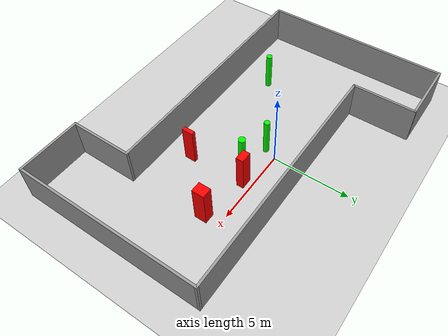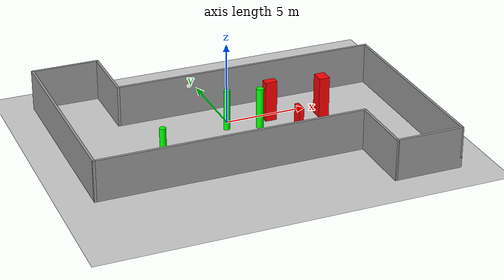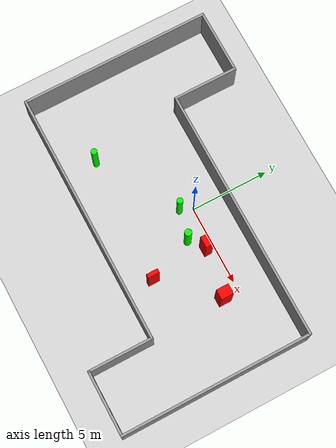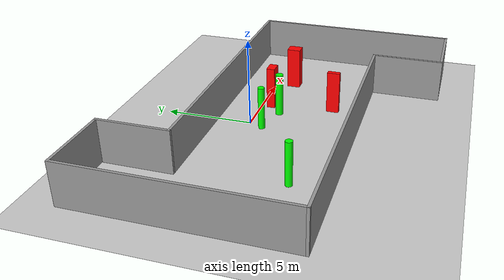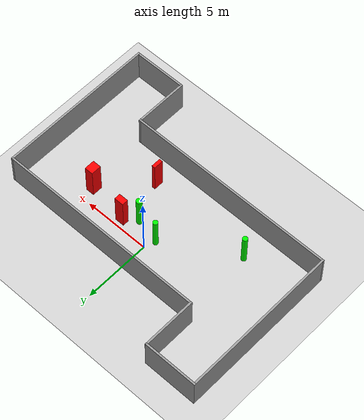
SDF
<sdf version="1.7">
 <world name="default">
  <light name="sun" type="directional">
   <pose>0 0 10 0 -0 0</pose>
   <diffuse>0.8 0.8 0.8 1</diffuse>
   <specular>0.2 0.2 0.2 1</specular>
   <attenuation>
    <range>1000</range>
    <constant>0.9</constant>
    <linear>0.01</linear>
    <quadratic>0.001</quadratic>
   </attenuation>
   <direction>-0.5 0.1 -0.9</direction>
   <spot><inner_angle>0</inner_angle><outer_angle>0</outer_angle><falloff>0</falloff></spot>
  </light>
  <model name="ground_plane">
   <static>1</static>
   <link name="link">
    <collision name="collision">
     <geometry><plane><normal>0 0 1</normal><size>100 100</size></plane></geometry>
     <surface>
      <contact><collide_bitmask>65535</collide_bitmask></contact>
      <friction><ode><mu>100</mu><mu2>50</mu2></ode></friction>
     </surface>
    </collision>
    <visual name="visual">
     <cast_shadows>0</cast_shadows>
     <geometry><plane><normal>0 0 1</normal><size>100 100</size></plane></geometry>
     <material>
      <script><uri>file://media/materials/scripts/gazebo.material</uri><name>Gazebo/Grey</name></script>
     </material>
    </visual>
   </link>
  </model>
  <gravity>0 0 -9.8</gravity>
  <magnetic_field>6e-06 2.3e-05 -4.2e-05</magnetic_field>
  <atmosphere type="adiabatic"/>
  <physics type="ode">
   <max_step_size>0.001</max_step_size>
   <real_time_factor>1</real_time_factor>
   <real_time_update_rate>1000</real_time_update_rate>
  </physics>
  <scene><ambient>0.4 0.4 0.4 1</ambient><background>0.7 0.7 0.7 1</background><shadows>1</shadows></scene>
  <spherical_coordinates>
   <surface_model>EARTH_WGS84</surface_model>
   <latitude_deg>0</latitude_deg>
   <longitude_deg>0</longitude_deg>
   <elevation>0</elevation>
   <heading_deg>0</heading_deg>
  </spherical_coordinates>
  <model name="my_base_walls">
   <link name="Wall_13">
    <collision name="Wall_13_Collision">
     <geometry><box><size>12.15 0.15 2.5</size></box></geometry>
     <pose>0 0 1.25 0 -0 0</pose>
    </collision>
    <visual name="Wall_13_Visual">
     <pose>0 0 1.25 0 -0 0</pose>
     <geometry><box><size>12.15 0.15 2.5</size></box></geometry>
     <material>
      <script><uri>file://media/materials/scripts/gazebo.material</uri><name>Gazebo/Grey</name></script>
      <ambient>1 1 1 1</ambient>
     </material>
     <meta><layer>0</layer></meta>
    </visual>
    <pose>10 -2 0 0 -0 1.5708</pose>
   </link>
   <link name="Wall_15">
    <collision name="Wall_15_Collision">
     <geometry><box><size>16.15 0.15 2.5</size></box></geometry>
     <pose>0 0 1.25 0 -0 0</pose>
    </collision>
    <visual name="Wall_15_Visual">
     <pose>0 0 1.25 0 -0 0</pose>
     <geometry><box><size>16.15 0.15 2.5</size></box></geometry>
     <material>
      <script><uri>file://media/materials/scripts/gazebo.material</uri><name>Gazebo/Grey</name></script>
      <ambient>1 1 1 1</ambient>
     </material>
     <meta><layer>0</layer></meta>
    </visual>
    <pose>2 4 0 0 -0 3.14159</pose>
   </link>
   <link name="Wall_17">
    <collision name="Wall_17_Collision">
     <geometry><box><size>4.15 0.15 2.5</size></box></geometry>
     <pose>0 0 1.25 0 -0 0</pose>
    </collision>
    <visual name="Wall_17_Visual">
     <pose>0 0 1.25 0 -0 0</pose>
     <geometry><box><size>4.15 0.15 2.5</size></box></geometry>
     <material>
      <script><uri>file://media/materials/scripts/gazebo.material</uri><name>Gazebo/Grey</name></script>
      <ambient>1 1 1 1</ambient>
     </material>
     <meta><layer>0</layer></meta>
    </visual>
    <pose>6 -6 0 0 -0 -1.5708</pose>
   </link>
   <link name="Wall_19">
    <collision name="Wall_19_Collision">
     <geometry><box><size>12.15 0.15 2.5</size></box></geometry>
     <pose>0 0 1.25 0 -0 0</pose>
    </collision>
    <visual name="Wall_19_Visual">
     <pose>0 0 1.25 0 -0 0</pose>
     <geometry><box><size>12.15 0.15 2.5</size></box></geometry>
     <material>
      <script><uri>file://media/materials/scripts/gazebo.material</uri><name>Gazebo/Grey</name></script>
      <ambient>1 1 1 1</ambient>
     </material>
     <meta><layer>0</layer></meta>
    </visual>
    <pose>-10 2 0 0 -0 1.5708</pose>
   </link>
   <link name="Wall_21">
    <collision name="Wall_21_Collision">
     <geometry><box><size>4.15 0.15 2.5</size></box></geometry>
     <pose>0 0 1.25 0 -0 0</pose>
    </collision>
    <visual name="Wall_21_Visual">
     <pose>0 0 1.25 0 -0 0</pose>
     <geometry><box><size>4.15 0.15 2.5</size></box></geometry>
     <material>
      <script><uri>file://media/materials/scripts/gazebo.material</uri><name>Gazebo/Grey</name></script>
      <ambient>1 1 1 1</ambient>
     </material>
     <meta><layer>0</layer></meta>
    </visual>
    <pose>-8 8 0 0 -0 0</pose>
   </link>
   <link name="Wall_23">
    <collision name="Wall_23_Collision">
     <geometry><box><size>4.15 0.15 2.5</size></box></geometry>
     <pose>0 0 1.25 0 -0 0</pose>
    </collision>
    <visual name="Wall_23_Visual">
     <pose>0 0 1.25 0 -0 0</pose>
     <geometry><box><size>4.15 0.15 2.5</size></box></geometry>
     <material>
      <script><uri>file://media/materials/scripts/gazebo.material</uri><name>Gazebo/Grey</name></script>
      <ambient>1 1 1 1</ambient>
     </material>
     <meta><layer>0</layer></meta>
    </visual>
    <pose>-6 6 0 0 -0 -1.5708</pose>
   </link>
   <link name="Wall_25">
    <collision name="Wall_25_Collision">
     <geometry><box><size>4.15 0.15 2.5</size></box></geometry>
     <pose>0 0 1.25 0 -0 0</pose>
    </collision>
    <visual name="Wall_25_Visual">
     <pose>0 0 1.25 0 -0 0</pose>
     <geometry><box><size>4.15 0.15 2.5</size></box></geometry>
     <material>
      <script><uri>file://media/materials/scripts/gazebo.material</uri><name>Gazebo/Grey</name></script>
      <ambient>1 1 1 1</ambient>
     </material>
     <meta><layer>0</layer></meta>
    </visual>
    <pose>8 -8 0 0 -0 0</pose>
   </link>
   <link name="Wall_9">
    <collision name="Wall_9_Collision">
     <geometry><box><size>16.15 0.15 2.5</size></box></geometry>
     <pose>0 0 1.25 0 -0 0</pose>
    </collision>
    <visual name="Wall_9_Visual">
     <pose>0 0 1.25 0 -0 0</pose>
     <geometry><box><size>16.15 0.15 2.5</size></box></geometry>
     <material>
      <script><uri>file://media/materials/scripts/gazebo.material</uri><name>Gazebo/Grey</name></script>
      <ambient>1 1 1 1</ambient>
     </material>
     <meta><layer>0</layer></meta>
    </visual>
    <pose>-2 -4 0 0 -0 3.14159</pose>
   </link>
   <static>1</static>
   <pose>-0 -2 0 0 -0 0</pose>
  </model>
  <model name="cylinder1">
   <static>1</static>
   <link name="link">
    <inertial>
     <mass>1</mass>
     <inertia><ixx>0.5</ixx><ixy>0</ixy><ixz>0</ixz><iyy>0.5</iyy><iyz>0</iyz><izz>1</izz></inertia>
    </inertial>
    <collision name="collision">
     <geometry><cylinder><radius>0.2229292832517762</radius><length>2.5</length></cylinder></geometry>
    </collision>
    <visual name="visual">
     <geometry><cylinder><radius>0.2229292832517762</radius><length>2.5</length></cylinder></geometry>
     <material>
      <ambient>0 1 0 1</ambient>
      <diffuse>0 1 0 1</diffuse>
      <specular>0.1 0.1 0.1 1</specular>
      <emissive>0 0 0 0</emissive>
     </material>
    </visual>
   </link>
   <pose>1.5870858219809403 -1.2694853865835585 1.25 0 0 0</pose>
  </model>
  <model name="cylinder2">
   <static>1</static>
   <link name="link">
    <inertial>
     <mass>1</mass>
     <inertia><ixx>0.5</ixx><ixy>0</ixy><ixz>0</ixz><iyy>0.5</iyy><iyz>0</iyz><izz>1</izz></inertia>
    </inertial>
    <collision name="collision">
     <geometry><cylinder><radius>0.1870670907414992</radius><length>2.5</length></cylinder></geometry>
    </collision>
    <visual name="visual">
     <geometry><cylinder><radius>0.1870670907414992</radius><length>2.5</length></cylinder></geometry>
     <material>
      <ambient>0 1 0 1</ambient>
      <diffuse>0 1 0 1</diffuse>
      <specular>0.1 0.1 0.1 1</specular>
      <emissive>0 0 0 0</emissive>
     </material>
    </visual>
   </link>
   <pose>-0.31139022827331964 -0.7954455074608164 1.25 0 0 0</pose>
  </model>
  <model name="cylinder3">
   <static>1</static>
   <link name="link">
    <inertial>
     <mass>1</mass>
     <inertia><ixx>0.5</ixx><ixy>0</ixy><ixz>0</ixz><iyy>0.5</iyy><iyz>0</iyz><izz>1</izz></inertia>
    </inertial>
    <collision name="collision">
     <geometry><cylinder><radius>0.1921633984069264</radius><length>2.5</length></cylinder></geometry>
    </collision>
    <visual name="visual">
     <geometry><cylinder><radius>0.1921633984069264</radius><length>2.5</length></cylinder></geometry>
     <material>
      <ambient>0 1 0 1</ambient>
      <diffuse>0 1 0 1</diffuse>
      <specular>0.1 0.1 0.1 1</specular>
      <emissive>0 0 0 0</emissive>
     </material>
    </visual>
   </link>
   <pose>-5.333520340747761 -3.8356831650264835 1.25 0 0 0</pose>
  </model>
  <model name="box1">
   <static>1</static>
   <link name="link">
    <inertial>
     <mass>1</mass>
     <inertia><ixx>0.083</ixx><ixy>0</ixy><ixz>0</ixz><iyy>0.083</iyy><iyz>0</iyz><izz>0.083</izz></inertia>
    </inertial>
    <collision name="collision">
     <geometry><box><size>0.26334117601213597 0.729674695017102 2.5</size></box></geometry>
    </collision>
    <visual name="visual">
     <geometry><box><size>0.26334117601213597 0.729674695017102 2.5</size></box></geometry>
     <material>
      <ambient>1 0 0 1</ambient>
      <diffuse>1 0 0 1</diffuse>
      <specular>0.1 0.1 0.1 1</specular>
      <emissive>0 0 0 0</emissive>
     </material>
    </visual>
    <sensor name="my_contact" type="contact">
     <contact><collision>box_collision</collision><topic>__default_topic__</topic></contact>
    </sensor>
   </link>
   <pose>2.756048351373444 -4.201393847063191 1.25 0 0 0</pose>
  </model>
  <model name="box2">
   <static>1</static>
   <link name="link">
    <inertial>
     <mass>1</mass>
     <inertia><ixx>0.083</ixx><ixy>0</ixy><ixz>0</ixz><iyy>0.083</iyy><iyz>0</iyz><izz>0.083</izz></inertia>
    </inertial>
    <collision name="collision">
     <geometry><box><size>0.6498738238296837 0.7848969322556928 2.5</size></box></geometry>
    </collision>
    <visual name="visual">
     <geometry><box><size>0.6498738238296837 0.7848969322556928 2.5</size></box></geometry>
     <material>
      <ambient>1 0 0 1</ambient>
      <diffuse>1 0 0 1</diffuse>
      <specular>0.1 0.1 0.1 1</specular>
      <emissive>0 0 0 0</emissive>
     </material>
    </visual>
    <sensor name="my_contact" type="contact">
     <contact><collision>box_collision</collision><topic>__default_topic__</topic></contact>
    </sensor>
   </link>
   <pose>5.623449867891509 -1.082479967048469 1.25 0 0 0</pose>
  </model>
  <model name="box3">
   <static>1</static>
   <link name="link">
    <inertial>
     <mass>1</mass>
     <inertia><ixx>0.083</ixx><ixy>0</ixy><ixz>0</ixz><iyy>0.083</iyy><iyz>0</iyz><izz>0.083</izz></inertia>
    </inertial>
    <collision name="collision">
     <geometry><box><size>0.7168293683165696 0.4729636879502353 2.5</size></box></geometry>
    </collision>
    <visual name="visual">
     <geometry><box><size>0.7168293683165696 0.4729636879502353 2.5</size></box></geometry>
     <material>
      <ambient>1 0 0 1</ambient>
      <diffuse>1 0 0 1</diffuse>
      <specular>0.1 0.1 0.1 1</specular>
      <emissive>0 0 0 0</emissive>
     </material>
    </visual>
    <sensor name="my_contact" type="contact">
     <contact><collision>box_collision</collision><topic>__default_topic__</topic></contact>
    </sensor>
   </link>
   <pose>2.5176035917306585 -0.555858732867736 1.25 0 0 0</pose>
  </model>
 </world>
</sdf>
